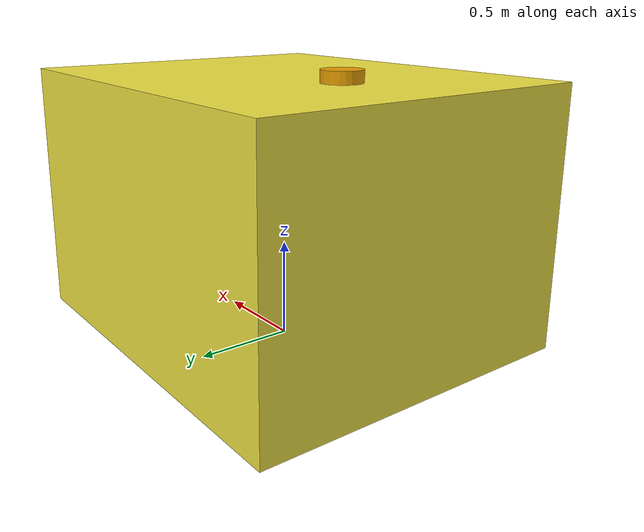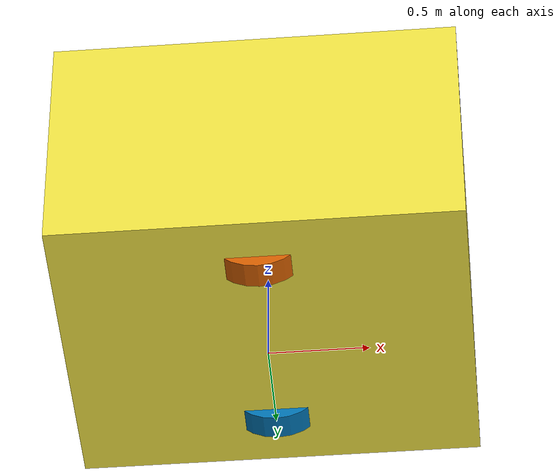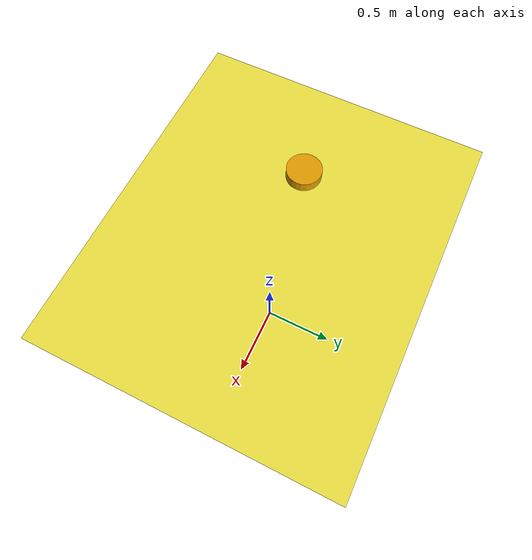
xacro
<?xml version="1.0"?>
<robot name="thunder_standalone" xmlns:xacro="http://ros.org/wiki/xacro">

    <xacro:include filename="$(find diff_wheeled_robot_gazebo)/urdf/thunder.d01.urdf.xacro"/>

    <!-- laser -->
    <joint name="laser_joint" type="fixed">
        <origin xyz="-0.429 0 1.16" rpy="0 0 ${M_PI}" />
        <parent link="base_link"/>
        <child link="laser_link" />
    </joint>
    <link name="laser_link">
        <visual>
          <geometry>
            <cylinder length="0.2" radius="0.1"/>
          </geometry>
          <origin xyz="0 0 0.1" rpy="0 0 0"/>
        </visual>
    </link>
    <!-- imu -->
    <joint name="imu_joint" type="fixed">
      <parent link="base_link" />
      <child link="imu_link" />
      <origin rpy="0 0 3.1416" xyz="0.209 -0.1205 0.67" />
    </joint>
    <link name="imu_link">
      <visual>
        <origin xyz="0 0 0" />
        <geometry>
          <cylinder length="0.05" radius="0.03" />
        </geometry>
      </visual>
    </link>
    <xacro:thunder/>
</robot>

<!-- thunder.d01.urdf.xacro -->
<robot name="thunder" xmlns:xacro="http://ros.org/wiki/xacro">

  <xacro:include filename="$(find diff_wheeled_robot_gazebo)/urdf/common_properties.urdf.xacro"/>

  <!-- Thunder -->
  <xacro:macro name="thunder">
    <link name="base_footprint"/>

    <xacro:property name="body_from_ground" value="0.06" />
    <xacro:property name="body_high" value="1.3" />

    <joint name="base_joint" type="fixed">
      <origin xyz="0 0 ${body_from_ground}" rpy="0 0 0" />
      <parent link="base_footprint"/>
      <child link="base_link" />
    </joint>
    <link name="base_link">
      <visual>
        <geometry>
          <box size="2.02 1.7 ${body_high}"/>
        </geometry>
        <origin xyz="0 0 ${body_high/2}" rpy="0 0 0"/>
      </visual>
    </link>

    <xacro:property name="wheel_radius" value="0.2535" />
    <xacro:macro name="wheel" params="prefix reflect">
      <link name="wheel_${prefix}_link">
        <visual>
          <geometry>
            <cylinder length="0.145" radius="${wheel_radius}"/>
          </geometry>
        </visual>
      </link>
      <joint name="wheel_${prefix}_joint" type="continuous">
        <parent link="base_link"/>
        <child link="wheel_${prefix}_link"/>
        <origin xyz="0.00 ${reflect*(1.1/2)} ${wheel_radius-body_from_ground}" rpy="${-M_PI/2} 0 0"/>
        <axis xyz="0 0 1"/>
      </joint>
    </xacro:macro>

    <xacro:wheel prefix="left" reflect="1"/>
    <xacro:wheel prefix="right" reflect="-1"/>

  </xacro:macro>

</robot>
